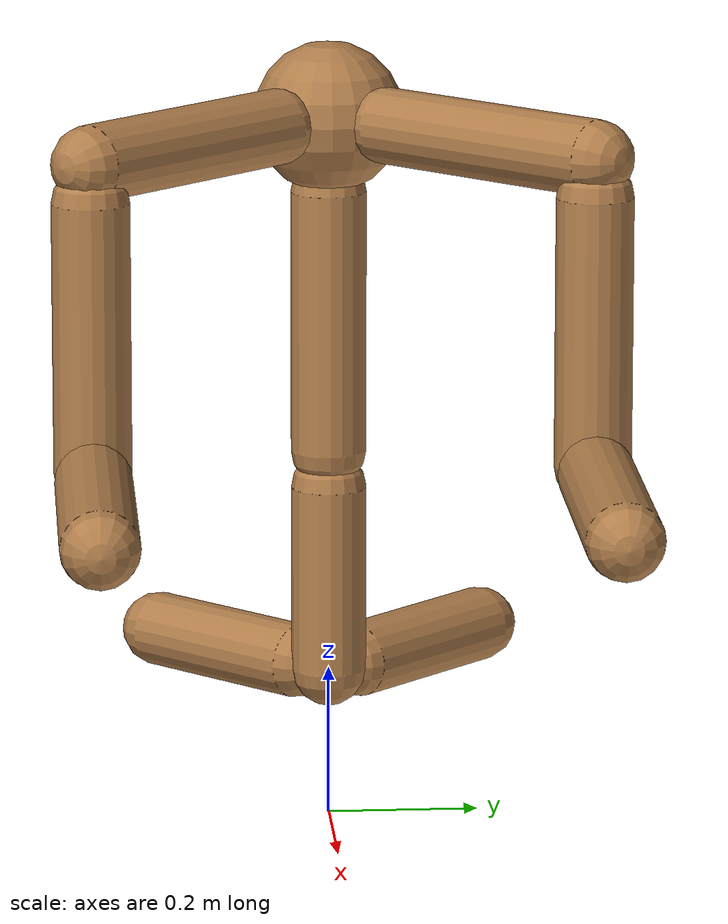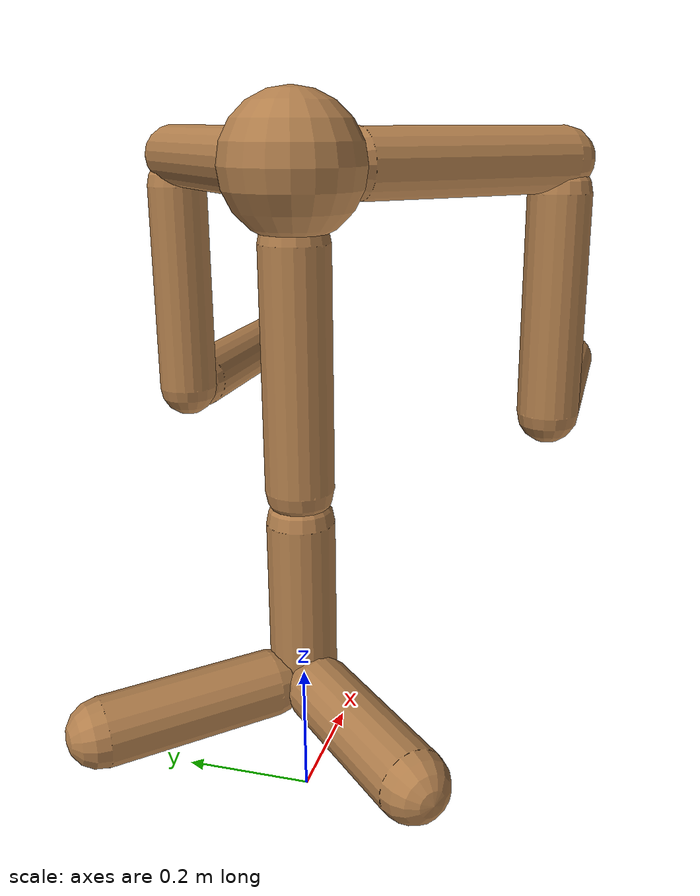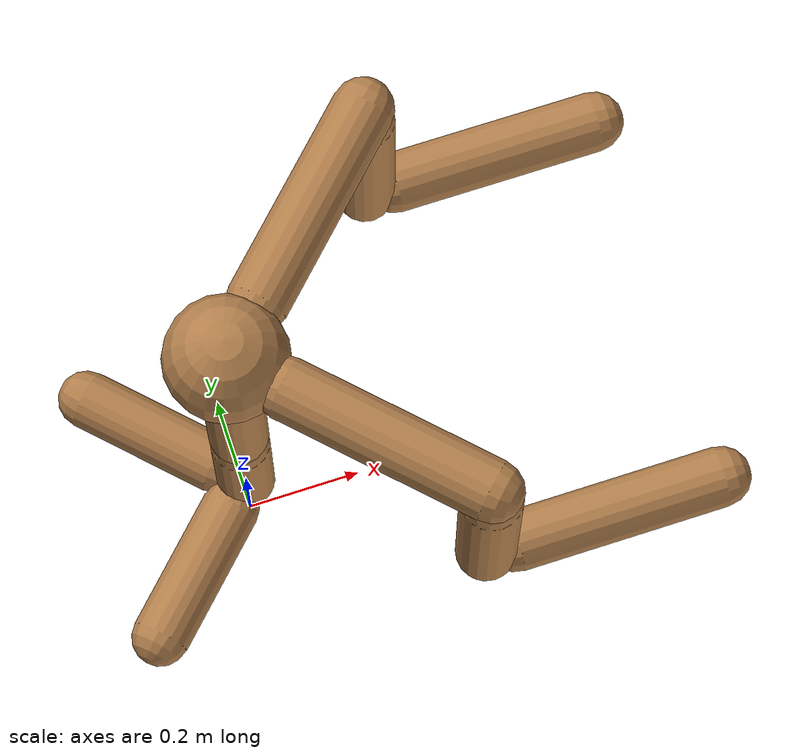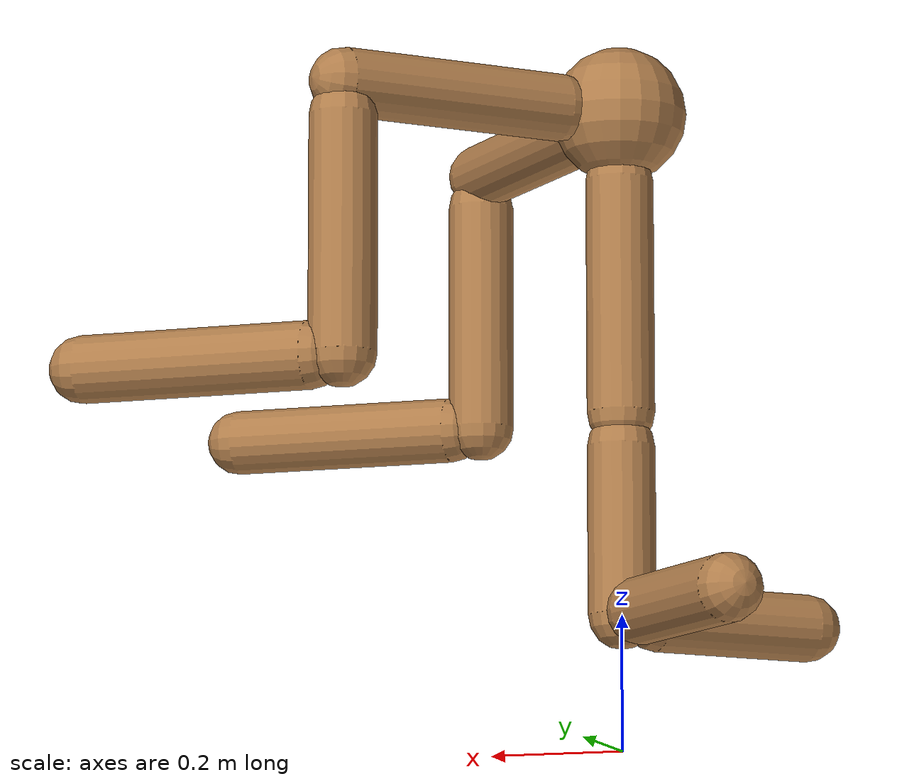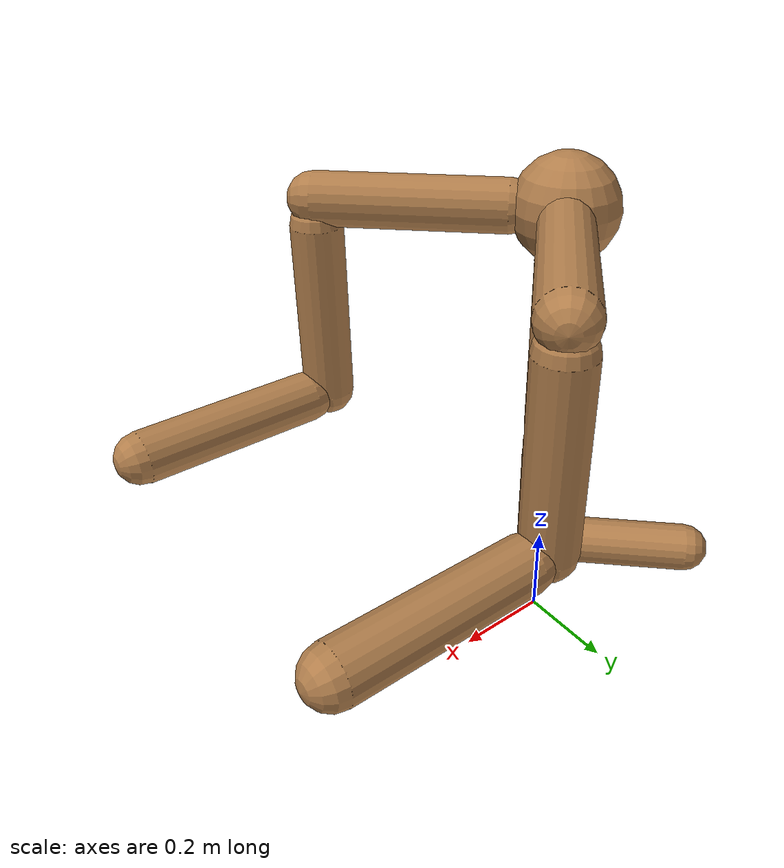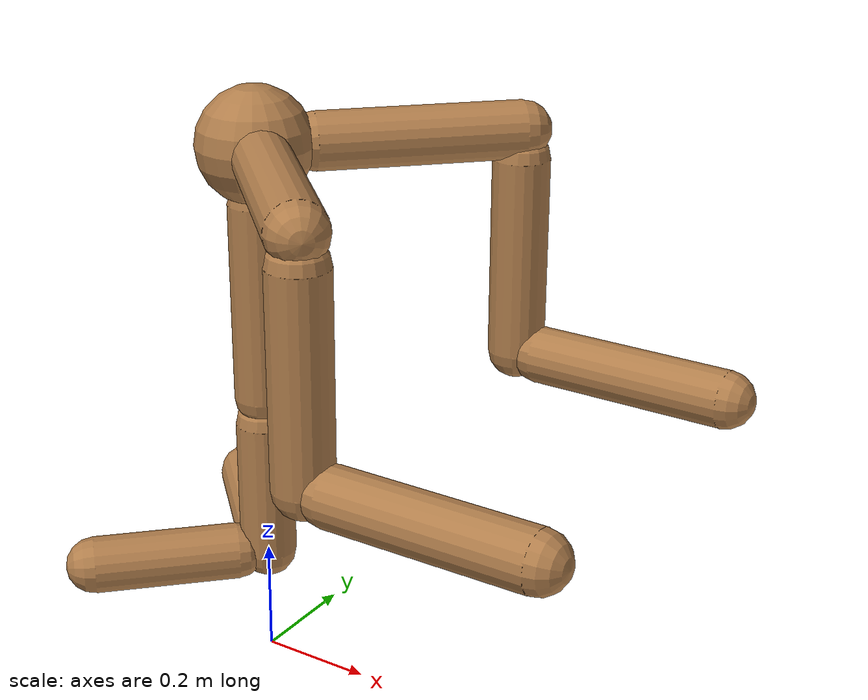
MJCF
<?xml version='1.0' encoding='UTF-8'?>
<!-- Universal Animal Template: unimal -->
<mujoco model="unimal">
  <compiler angle="degree"/>
  <size njmax="2000" nconmax="500"/>
  <option timestep=".005">
    <flag filterparent="disable"/>
  </option>
  <!-- Common defaults to make search space tractable -->
  <default>
    <!-- Define motor defaults -->
    <motor ctrlrange="-1 1" ctrllimited="true"/>
    <!-- Define joint defaults -->
    <default class="normal_joint">
      <joint type="hinge" damping="1" stiffness="1" armature="1" limited="true" range="-120 120" solimplimit="0 0.99 0.01"/>
    </default>
    <default class="walker_joint">
      <joint type="hinge" damping="0.2" stiffness="1" armature=".01" limited="true" range="-120 120" solimplimit="0 0.99 0.01"/>
    </default>
    <default class="stiff_joint">
      <joint type="hinge" damping="5" stiffness="10" armature=".01" limited="true" solimplimit="0 0.99 0.01"/>
    </default>
    <default class="free">
      <joint limited="false" damping="0" armature="0" stiffness="0"/>
    </default>
    <default class="growth_site">
      <site size="1e-6 1e-6 1e-6"/>
    </default>
    <default class="torso_growth_site">
      <site size="1e-6 1e-6 1e-6"/>
    </default>
    <default class="mirror_growth_site">
      <site size="1e-6 1e-6 1e-6"/>
    </default>
    <default class="btm_pos_site">
      <site size="1e-6 1e-6 1e-6"/>
    </default>
    <default class="box_face_site">
      <site size="1e-6 1e-6 1e-6"/>
    </default>
    <default class="imu_vel">
      <site type="box" size="0.05" rgba="1 0 0 0"/>
    </default>
    <default class="touch_site">
      <site group="3" rgba="0 0 1 .3"/>
    </default>
    <default class="food_site">
      <site material="food" size="0.15"/>
    </default>
    <!-- Define geom defaults -->
    <geom type="capsule" condim="3" friction="0.7 0.1 0.1" material="self"/>
  </default>
  <worldbody>
    <light diffuse="1 1 1" directional="true" exponent="1" pos="0 0 8" specular="0.1 0.1 0.1" dir="0 0 -1"/>
    <!-- Programatically generated xml goes here -->
    <body name="torso/0" pos="0 0 0.95">
      <joint name="root" type="free" class="free"/>
      <site name="root" class="imu_vel"/>
      <geom name="torso/0" type="sphere" size="0.1" condim="3" density="900"/>
      <camera name="side" pos="0 -7 2" xyaxes="1 0 0 0 1 2" mode="trackcom"/>
      <site name="torso/0" class="growth_site" pos="0 0 0"/>
      <site name="torso/btm_pos/0" class="btm_pos_site" pos="0 0 -0.1"/>
      <site name="torso/touch/0" class="touch_site" size="0.11"/>
      <site name="torso/vertical/0" class="torso_growth_site" pos="0 0 -0.1"/>
      <body name="limb/0" pos="0.0 0.0 -0.1">
        <joint name="limby/0" type="hinge" class="normal_joint" range="-90 0" pos="0.0 0.0 0.05" axis="0.0 1.0 0.0"/>
        <geom name="limb/0" type="capsule" fromto="0.0 0.0 0.0 0.0 0.0 -0.35" size="0.05" density="500"/>
        <site name="limb/mid/0" class="growth_site" pos="0.0 0.0 -0.2"/>
        <site name="limb/btm/0" class="growth_site" pos="0.0 0.0 -0.35"/>
        <site name="limb/btm_pos/0" class="btm_pos_site" pos="0.0 0.0 -0.35"/>
        <site name="limb/touch/0" class="touch_site" size="0.060000000000000005" fromto="0.0 0.0 0.0 0.0 0.0 -0.35" type="capsule"/>
        <body name="limb/5" pos="0.0 0.0 -0.39999999999999997">
          <joint name="limbx/5" type="hinge" class="normal_joint" range="-30 30" pos="0.0 0.0 0.05" axis="1.0 0.0 0.0"/>
          <geom name="limb/5" type="capsule" fromto="0.0 0.0 0.0 0.0 0.0 -0.25" size="0.05" density="500"/>
          <site name="limb/mid/5" class="growth_site" pos="0.0 0.0 -0.15"/>
          <site name="limb/btm/5" class="growth_site" pos="0.0 0.0 -0.25"/>
          <site name="limb/btm_pos/5" class="btm_pos_site" pos="0.0 0.0 -0.25"/>
          <site name="limb/touch/5" class="touch_site" size="0.060000000000000005" fromto="0.0 0.0 0.0 0.0 0.0 -0.25" type="capsule"/>
          <body name="limb/18" pos="-0.04 0.04 -0.25">
            <joint name="limby/18" type="hinge" class="normal_joint" range="0 30" pos="0.04 -0.04 0.0" axis="0.5 0.5 0.7071"/>
            <geom name="limb/18" type="capsule" fromto="0.0 0.0 0.0 -0.18 0.18 0.0" size="0.05" density="500"/>
            <site name="limb/mid/18" class="mirror_growth_site" pos="-0.11 0.11 0.0"/>
            <site name="limb/btm/18" class="mirror_growth_site" pos="-0.18 0.18 0.0"/>
            <site name="limb/btm_pos/18" class="btm_pos_site" pos="-0.21 0.21 0.0"/>
            <site name="limb/touch/18" class="touch_site" size="0.060000000000000005" fromto="0.0 0.0 0.0 -0.18 0.18 0.0" type="capsule"/>
          </body>
          <body name="limb/19" pos="-0.04 -0.04 -0.25">
            <joint name="limby/19" type="hinge" class="normal_joint" range="0 30" pos="0.04 0.04 0.0" axis="-0.5 0.5 -0.7071"/>
            <geom name="limb/19" type="capsule" fromto="0.0 0.0 0.0 -0.18 -0.18 0.0" size="0.05" density="500"/>
            <site name="limb/mid/19" class="mirror_growth_site" pos="-0.11 -0.11 0.0"/>
            <site name="limb/btm/19" class="mirror_growth_site" pos="-0.18 -0.18 0.0"/>
            <site name="limb/btm_pos/19" class="btm_pos_site" pos="-0.21 -0.21 0.0"/>
            <site name="limb/touch/19" class="touch_site" size="0.060000000000000005" fromto="0.0 0.0 0.0 -0.18 -0.18 0.0" type="capsule"/>
          </body>
        </body>
      </body>
      <body name="limb/16" pos="0.07 0.07 0.0">
        <joint name="limbx/16" type="hinge" class="normal_joint" range="-30 60" pos="-0.04 -0.04 0.0" axis="0.5 -0.5 0.7071"/>
        <geom name="limb/16" type="capsule" fromto="0.0 0.0 0.0 0.25 0.25 0.0" size="0.05" density="500"/>
        <site name="limb/mid/16" class="mirror_growth_site" pos="0.14 0.14 0.0"/>
        <site name="limb/btm/16" class="mirror_growth_site" pos="0.25 0.25 0.0"/>
        <site name="limb/btm_pos/16" class="btm_pos_site" pos="0.25 0.25 0.0"/>
        <site name="limb/touch/16" class="touch_site" size="0.060000000000000005" fromto="0.0 0.0 0.0 0.25 0.25 0.0" type="capsule"/>
        <body name="limb/20" pos="0.25 0.25 -0.05">
          <joint name="limbx/20" type="hinge" class="normal_joint" range="0 90" pos="0.0 0.0 0.05" axis="1.0 0.0 0.0"/>
          <geom name="limb/20" type="capsule" fromto="0.0 0.0 0.0 0.0 0.0 -0.35" size="0.05" density="500"/>
          <site name="limb/mid/20" class="mirror_growth_site" pos="0.0 0.0 -0.2"/>
          <site name="limb/btm/20" class="mirror_growth_site" pos="0.0 0.0 -0.35"/>
          <site name="limb/btm_pos/20" class="btm_pos_site" pos="0.0 0.0 -0.4"/>
          <site name="limb/touch/20" class="touch_site" size="0.060000000000000005" fromto="0.0 0.0 0.0 0.0 0.0 -0.35" type="capsule"/>
          <body name="limb/22" pos="0.05 0.0 -0.35">
            <joint name="limbx/22" type="hinge" class="normal_joint" range="-90 0" pos="-0.05 0.0 0.0" axis="0.0 0.0 1.0"/>
            <geom name="limb/22" type="capsule" fromto="0.0 0.0 0.0 0.35 0.0 0.0" size="0.05" density="500"/>
            <site name="limb/mid/22" class="mirror_growth_site" pos="0.2 0.0 0.0"/>
            <site name="limb/btm/22" class="mirror_growth_site" pos="0.35 0.0 0.0"/>
            <site name="limb/btm_pos/22" class="btm_pos_site" pos="0.4 0.0 0.0"/>
            <site name="limb/touch/22" class="touch_site" size="0.060000000000000005" fromto="0.0 0.0 0.0 0.35 0.0 0.0" type="capsule"/>
          </body>
        </body>
      </body>
      <body name="limb/17" pos="0.07 -0.07 0.0">
        <joint name="limbx/17" type="hinge" class="normal_joint" range="-30 60" pos="-0.04 0.04 0.0" axis="0.5 0.5 0.7071"/>
        <geom name="limb/17" type="capsule" fromto="0.0 0.0 0.0 0.25 -0.25 0.0" size="0.05" density="500"/>
        <site name="limb/mid/17" class="mirror_growth_site" pos="0.14 -0.14 0.0"/>
        <site name="limb/btm/17" class="mirror_growth_site" pos="0.25 -0.25 0.0"/>
        <site name="limb/btm_pos/17" class="btm_pos_site" pos="0.25 -0.25 0.0"/>
        <site name="limb/touch/17" class="touch_site" size="0.060000000000000005" fromto="0.0 0.0 0.0 0.25 -0.25 0.0" type="capsule"/>
        <body name="limb/21" pos="0.25 -0.25 -0.05">
          <joint name="limbx/21" type="hinge" class="normal_joint" range="0 90" pos="0.0 0.0 0.05" axis="1.0 0.0 0.0"/>
          <geom name="limb/21" type="capsule" fromto="0.0 0.0 0.0 0.0 0.0 -0.35" size="0.05" density="500"/>
          <site name="limb/mid/21" class="mirror_growth_site" pos="0.0 0.0 -0.2"/>
          <site name="limb/btm/21" class="mirror_growth_site" pos="0.0 0.0 -0.35"/>
          <site name="limb/btm_pos/21" class="btm_pos_site" pos="0.0 0.0 -0.4"/>
          <site name="limb/touch/21" class="touch_site" size="0.060000000000000005" fromto="0.0 0.0 0.0 0.0 0.0 -0.35" type="capsule"/>
          <body name="limb/23" pos="0.05 0.0 -0.35">
            <joint name="limbx/23" type="hinge" class="normal_joint" range="-90 0" pos="-0.05 0.0 0.0" axis="0.0 0.0 1.0"/>
            <geom name="limb/23" type="capsule" fromto="0.0 0.0 0.0 0.35 0.0 0.0" size="0.05" density="500"/>
            <site name="limb/mid/23" class="mirror_growth_site" pos="0.2 0.0 0.0"/>
            <site name="limb/btm/23" class="mirror_growth_site" pos="0.35 0.0 0.0"/>
            <site name="limb/btm_pos/23" class="btm_pos_site" pos="0.4 0.0 0.0"/>
            <site name="limb/touch/23" class="touch_site" size="0.060000000000000005" fromto="0.0 0.0 0.0 0.35 0.0 0.0" type="capsule"/>
          </body>
        </body>
      </body>
    </body>
  </worldbody>
  <actuator>
    <motor joint="limby/0" gear="200" name="limby/0"/>
    <motor joint="limbx/5" gear="250" name="limbx/5"/>
    <motor joint="limby/18" gear="150" name="limby/18"/>
    <motor joint="limby/19" gear="150" name="limby/19"/>
    <motor joint="limbx/16" gear="300" name="limbx/16"/>
    <motor joint="limbx/20" gear="300" name="limbx/20"/>
    <motor joint="limbx/22" gear="150" name="limbx/22"/>
    <motor joint="limbx/17" gear="300" name="limbx/17"/>
    <motor joint="limbx/21" gear="300" name="limbx/21"/>
    <motor joint="limbx/23" gear="150" name="limbx/23"/>
  </actuator>
  <sensor>
    <accelerometer name="torso_accel" site="root"/>
    <gyro name="torso_gyro" site="root"/>
    <velocimeter name="torso_vel" site="root"/>
    <subtreeangmom name="unimal_am" body="torso/0"/>
    <touch name="torso/0" site="torso/touch/0"/>
    <touch name="limb/0" site="limb/touch/0"/>
    <touch name="limb/5" site="limb/touch/5"/>
    <touch name="limb/18" site="limb/touch/18"/>
    <touch name="limb/19" site="limb/touch/19"/>
    <touch name="limb/16" site="limb/touch/16"/>
    <touch name="limb/20" site="limb/touch/20"/>
    <touch name="limb/22" site="limb/touch/22"/>
    <touch name="limb/17" site="limb/touch/17"/>
    <touch name="limb/21" site="limb/touch/21"/>
    <touch name="limb/23" site="limb/touch/23"/>
  </sensor>
  <!-- Add hfield assets -->
  <asset/>
  <!-- List of contacts to exclude -->
  <contact>
    <exclude name="limb/18:limb/19" body1="limb/18" body2="limb/19"/>
  </contact>
  <!-- Define material, texture etc -->
  <asset>
    <material name="grid" texture="grid" texrepeat="1 1" texuniform="true" reflectance="0.1"/>
    <material name="hfield" texture="hfield" texrepeat="1 1" texuniform="true" reflectance="0.1"/>
    <material name="wall" texture="wall" texrepeat="1 1" texuniform="true" reflectance=".5"/>
    <material name="platform" texture="platform" texrepeat="1 1" texuniform="true" reflectance=".5"/>
    <material name="boundary" texture="boundary" texrepeat="1 1" texuniform="true" reflectance=".5"/>
    <material name="jump" texture="jump" texrepeat="1 1" texuniform="true" reflectance=".5"/>
    <material name="goal" rgba="1 0 0 1"/>
    <material name="food" rgba="0 0 1 1" emission="1"/>
    <material name="init_position" rgba="0 1 0 0.7"/>
    <material name="self" rgba=".7 .5 .3 1"/>
    <material name="self_invisible" rgba=".7 .5 .3 0"/>
    <material name="self_default" rgba=".7 .5 .3 1"/>
    <material name="self_highlight" rgba="0 .5 .3 1"/>
    <material name="effector" rgba=".7 .4 .2 1"/>
    <material name="effector_default" rgba=".7 .4 .2 1"/>
    <material name="effector_highlight" rgba="0 .5 .3 1"/>
    <material name="decoration" rgba=".3 .5 .7 1"/>
    <material name="eye" rgba="0 .2 1 1"/>
    <material name="target" rgba=".6 .3 .3 1"/>
    <material name="target_default" rgba=".6 .3 .3 1"/>
    <material name="target_highlight" rgba=".6 .3 .3 .4"/>
    <material name="site" rgba=".5 .5 .5 .3"/>
    <material name="ball" texture="ball"/>
  </asset>
  <asset>
    <texture name="grid" type="2d" builtin="checker" rgb1="0.4 0.4 0.4" rgb2="0.4 0.4 0.4" width="300" height="300" mark="edge" markrgb="0.2 0.2 0.2"/>
    <texture name="hfield" type="2d" builtin="checker" rgb1="0.4 0.4 0.4" rgb2="0.4 0.4 0.4" width="300" height="300" mark="edge" markrgb="0.2 0.2 0.2"/>
    <texture name="wall" type="2d" builtin="flat" rgb1="0.9 0.7 0" rgb2="0.9 0.7 0" width="300" height="300"/>
    <texture name="platform" type="2d" builtin="flat" rgb1="0.3 0 0.8" rgb2="0.3 0 0.8" width="300" height="300"/>
    <texture name="boundary" type="2d" builtin="flat" rgb1="0.3 0.3 0.3" rgb2="0.3 0.3 0.3" width="300" height="300"/>
    <texture name="jump" type="2d" builtin="flat" rgb1="0.3 0.3 0.3" rgb2="0.3 0.3 0.3" width="300" height="300"/>
    <texture name="skybox" type="skybox" builtin="gradient" rgb1="1 1 1" rgb2="0.6 0.6 0.6" width="800" height="800"/>
    <texture name="ball" builtin="checker" mark="cross" width="151" height="151" rgb1="0.1 0.1 0.1" rgb2="0.9 0.9 0.9" markrgb="1 1 1"/>
  </asset>
  <visual>
    <headlight ambient="0.6 0.6 0.6" diffuse="0.3 0.3 0.3" specular="0 0 0"/>
    <map znear=".01" shadowclip="0.5"/>
    <quality shadowsize="16384"/>
  </visual>
</mujoco>
